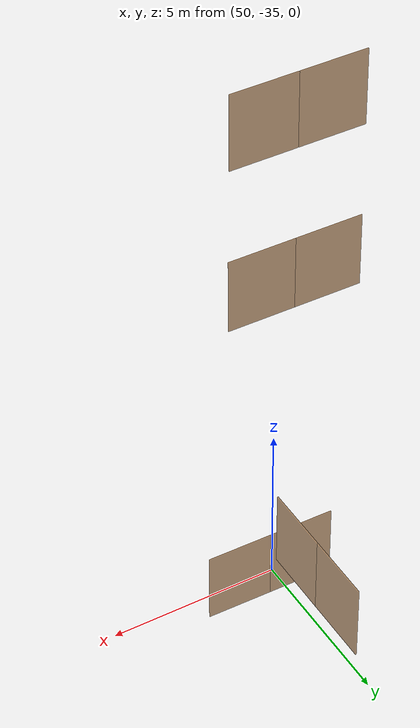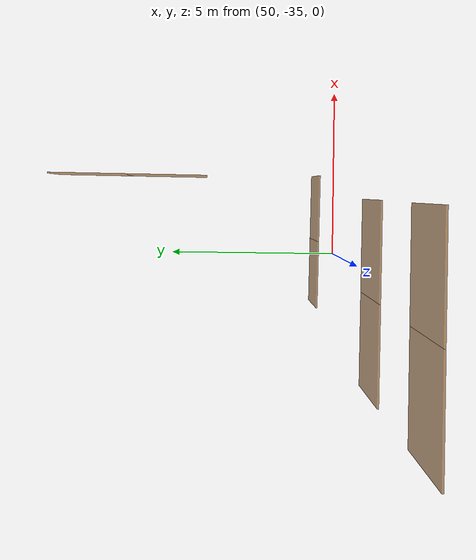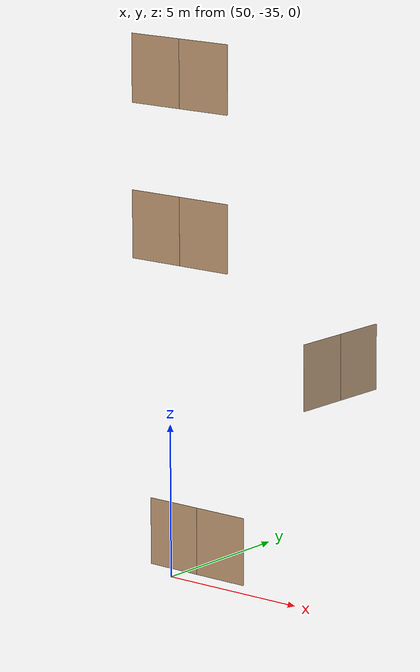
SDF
<sdf version="1.7">
 <world name="sim_world">
  <model name="puerta22">
   <pose>50.48691605512798 -34.29860390191516 0.0 0 0 -0.012374502945588612</pose>
   <link name="right">
    <pose>0.9640616405178116 0 1.11 0 0 0</pose>
    <visual name="right_visual">
     <geometry><box><size>1.9181232810356232 0.03 2.2</size></box></geometry>
     <material>
      <ambient>0.5 0.25 0 0.6</ambient>
      <diffuse>0.5 0.25 0 0.6</diffuse>
      <pbr><metal><metalness>0.0</metalness></metal></pbr>
     </material>
    </visual>
    <collision name="right_collision">
     <geometry><box><size>1.9181232810356232 0.03 2.2</size></box></geometry>
     <surface><contact><collide_bitmask>0x02</collide_bitmask></contact></surface>
    </collision>
    <inertial>
     <mass>50.0</mass>
     <inertia><ixx>20.17041666666667</ixx><iyy>35.49665383854527</iyy><izz>15.333737171878605</izz></inertia>
    </inertial>
   </link>
   <joint name="right_joint" type="revolute">
    <parent>world</parent>
    <child>right</child>
    <axis><xyz>0 0 -1</xyz><limit><lower>0</lower><upper>1.57</upper></limit></axis>
    <pose>0.9640616405178116 0 0 0 0 0</pose>
   </joint>
   <link name="left">
    <pose>-0.9640616405178116 0 1.11 0 0 0</pose>
    <visual name="left_visual">
     <geometry><box><size>1.9181232810356232 0.03 2.2</size></box></geometry>
     <material>
      <ambient>0.5 0.25 0 0.6</ambient>
      <diffuse>0.5 0.25 0 0.6</diffuse>
      <pbr><metal><metalness>0.0</metalness></metal></pbr>
     </material>
    </visual>
    <collision name="left_collision">
     <geometry><box><size>1.9181232810356232 0.03 2.2</size></box></geometry>
     <surface><contact><collide_bitmask>0x02</collide_bitmask></contact></surface>
    </collision>
    <inertial>
     <mass>50.0</mass>
     <inertia><ixx>20.17041666666667</ixx><iyy>35.49665383854527</iyy><izz>15.333737171878605</izz></inertia>
    </inertial>
   </link>
   <joint name="left_joint" type="revolute">
    <parent>world</parent>
    <child>left</child>
    <axis><xyz>0 0 -1</xyz><limit><lower>-1.57</lower><upper>0</upper></limit></axis>
    <pose>-0.9640616405178116 0 0 0 0 0</pose>
   </joint>
   <plugin name="register_component" filename="libregister_component.so">
    <component name="Door">
     <v_max_door>0.5</v_max_door>
     <a_max_door>0.3</a_max_door>
     <a_nom_door>0.15</a_nom_door>
     <dx_min_door>0.01</dx_min_door>
     <f_max_door>500.0</f_max_door>
     <ros_interface>true</ros_interface>
     <door name="puerta22" type="DoubleSwingDoor" left_joint_name="left_joint" right_joint_name="right_joint"/>
    </component>
   </plugin>
  </model>
  <model name="puerta3150">
   <pose>52.29346804669639 -29.168565169091984 5.0 0 0 -1.5774881157275484</pose>
   <link name="right">
    <pose>0.9519466512305291 0 1.11 0 0 0</pose>
    <visual name="right_visual">
     <geometry><box><size>1.8938933024610582 0.03 2.2</size></box></geometry>
     <material>
      <ambient>0.5 0.25 0 0.6</ambient>
      <diffuse>0.5 0.25 0 0.6</diffuse>
      <pbr><metal><metalness>0.0</metalness></metal></pbr>
     </material>
    </visual>
    <collision name="right_collision">
     <geometry><box><size>1.8938933024610582 0.03 2.2</size></box></geometry>
     <surface><contact><collide_bitmask>0x02</collide_bitmask></contact></surface>
    </collision>
    <inertial>
     <mass>50.0</mass>
     <inertia><ixx>20.17041666666667</ixx><iyy>35.11179933794523</iyy><izz>14.948882671278557</izz></inertia>
    </inertial>
   </link>
   <joint name="right_joint" type="revolute">
    <parent>world</parent>
    <child>right</child>
    <axis><xyz>0 0 -1</xyz><limit><lower>0</lower><upper>1.57</upper></limit></axis>
    <pose>0.9519466512305291 0 0 0 0 0</pose>
   </joint>
   <link name="left">
    <pose>-0.9519466512305291 0 1.11 0 0 0</pose>
    <visual name="left_visual">
     <geometry><box><size>1.8938933024610582 0.03 2.2</size></box></geometry>
     <material>
      <ambient>0.5 0.25 0 0.6</ambient>
      <diffuse>0.5 0.25 0 0.6</diffuse>
      <pbr><metal><metalness>0.0</metalness></metal></pbr>
     </material>
    </visual>
    <collision name="left_collision">
     <geometry><box><size>1.8938933024610582 0.03 2.2</size></box></geometry>
     <surface><contact><collide_bitmask>0x02</collide_bitmask></contact></surface>
    </collision>
    <inertial>
     <mass>50.0</mass>
     <inertia><ixx>20.17041666666667</ixx><iyy>35.11179933794523</iyy><izz>14.948882671278557</izz></inertia>
    </inertial>
   </link>
   <joint name="left_joint" type="revolute">
    <parent>world</parent>
    <child>left</child>
    <axis><xyz>0 0 -1</xyz><limit><lower>-1.57</lower><upper>0</upper></limit></axis>
    <pose>-0.9519466512305291 0 0 0 0 0</pose>
   </joint>
   <plugin name="register_component" filename="libregister_component.so">
    <component name="Door">
     <v_max_door>0.5</v_max_door>
     <a_max_door>0.3</a_max_door>
     <a_nom_door>0.15</a_nom_door>
     <dx_min_door>0.01</dx_min_door>
     <f_max_door>500.0</f_max_door>
     <ros_interface>true</ros_interface>
     <door name="puerta3150" type="DoubleSwingDoor" left_joint_name="left_joint" right_joint_name="right_joint"/>
    </component>
   </plugin>
  </model>
  <model name="puerta5247">
   <pose>49.852148461334 -34.325097664764144 10.0 0 0 -0.0058148315706794945</pose>
   <link name="right">
    <pose>0.9715760565459932 0 1.11 0 0 0</pose>
    <visual name="right_visual">
     <geometry><box><size>1.9331521130919864 0.03 2.2</size></box></geometry>
     <material>
      <ambient>0.5 0.25 0 0.6</ambient>
      <diffuse>0.5 0.25 0 0.6</diffuse>
      <pbr><metal><metalness>0.0</metalness></metal></pbr>
     </material>
    </visual>
    <collision name="right_collision">
     <geometry><box><size>1.9331521130919864 0.03 2.2</size></box></geometry>
     <surface><contact><collide_bitmask>0x02</collide_bitmask></contact></surface>
    </collision>
    <inertial>
     <mass>50.0</mass>
     <inertia><ixx>20.17041666666667</ixx><iyy>35.73782121813339</iyy><izz>15.57490455146672</izz></inertia>
    </inertial>
   </link>
   <joint name="right_joint" type="revolute">
    <parent>world</parent>
    <child>right</child>
    <axis><xyz>0 0 -1</xyz><limit><lower>0</lower><upper>1.57</upper></limit></axis>
    <pose>0.9715760565459932 0 0 0 0 0</pose>
   </joint>
   <link name="left">
    <pose>-0.9715760565459932 0 1.11 0 0 0</pose>
    <visual name="left_visual">
     <geometry><box><size>1.9331521130919864 0.03 2.2</size></box></geometry>
     <material>
      <ambient>0.5 0.25 0 0.6</ambient>
      <diffuse>0.5 0.25 0 0.6</diffuse>
      <pbr><metal><metalness>0.0</metalness></metal></pbr>
     </material>
    </visual>
    <collision name="left_collision">
     <geometry><box><size>1.9331521130919864 0.03 2.2</size></box></geometry>
     <surface><contact><collide_bitmask>0x02</collide_bitmask></contact></surface>
    </collision>
    <inertial>
     <mass>50.0</mass>
     <inertia><ixx>20.17041666666667</ixx><iyy>35.73782121813339</iyy><izz>15.57490455146672</izz></inertia>
    </inertial>
   </link>
   <joint name="left_joint" type="revolute">
    <parent>world</parent>
    <child>left</child>
    <axis><xyz>0 0 -1</xyz><limit><lower>-1.57</lower><upper>0</upper></limit></axis>
    <pose>-0.9715760565459932 0 0 0 0 0</pose>
   </joint>
   <plugin name="register_component" filename="libregister_component.so">
    <component name="Door">
     <v_max_door>0.5</v_max_door>
     <a_max_door>0.3</a_max_door>
     <a_nom_door>0.15</a_nom_door>
     <dx_min_door>0.01</dx_min_door>
     <f_max_door>500.0</f_max_door>
     <ros_interface>true</ros_interface>
     <door name="puerta5247" type="DoubleSwingDoor" left_joint_name="left_joint" right_joint_name="right_joint"/>
    </component>
   </plugin>
  </model>
  <model name="puerta7185">
   <pose>49.849562544955305 -34.3061179379897 15.0 0 0 -0.0018291152137669391</pose>
   <link name="right">
    <pose>0.964516897346093 0 1.11 0 0 0</pose>
    <visual name="right_visual">
     <geometry><box><size>1.919033794692186 0.03 2.2</size></box></geometry>
     <material>
      <ambient>0.5 0.25 0 0.6</ambient>
      <diffuse>0.5 0.25 0 0.6</diffuse>
      <pbr><metal><metalness>0.0</metalness></metal></pbr>
     </material>
    </visual>
    <collision name="right_collision">
     <geometry><box><size>1.919033794692186 0.03 2.2</size></box></geometry>
     <surface><contact><collide_bitmask>0x02</collide_bitmask></contact></surface>
    </collision>
    <inertial>
     <mass>50.0</mass>
     <inertia><ixx>20.17041666666667</ixx><iyy>35.51121127154455</iyy><izz>15.348294604877882</izz></inertia>
    </inertial>
   </link>
   <joint name="right_joint" type="revolute">
    <parent>world</parent>
    <child>right</child>
    <axis><xyz>0 0 -1</xyz><limit><lower>0</lower><upper>1.57</upper></limit></axis>
    <pose>0.964516897346093 0 0 0 0 0</pose>
   </joint>
   <link name="left">
    <pose>-0.964516897346093 0 1.11 0 0 0</pose>
    <visual name="left_visual">
     <geometry><box><size>1.919033794692186 0.03 2.2</size></box></geometry>
     <material>
      <ambient>0.5 0.25 0 0.6</ambient>
      <diffuse>0.5 0.25 0 0.6</diffuse>
      <pbr><metal><metalness>0.0</metalness></metal></pbr>
     </material>
    </visual>
    <collision name="left_collision">
     <geometry><box><size>1.919033794692186 0.03 2.2</size></box></geometry>
     <surface><contact><collide_bitmask>0x02</collide_bitmask></contact></surface>
    </collision>
    <inertial>
     <mass>50.0</mass>
     <inertia><ixx>20.17041666666667</ixx><iyy>35.51121127154455</iyy><izz>15.348294604877882</izz></inertia>
    </inertial>
   </link>
   <joint name="left_joint" type="revolute">
    <parent>world</parent>
    <child>left</child>
    <axis><xyz>0 0 -1</xyz><limit><lower>-1.57</lower><upper>0</upper></limit></axis>
    <pose>-0.964516897346093 0 0 0 0 0</pose>
   </joint>
   <plugin name="register_component" filename="libregister_component.so">
    <component name="Door">
     <v_max_door>0.5</v_max_door>
     <a_max_door>0.3</a_max_door>
     <a_nom_door>0.15</a_nom_door>
     <dx_min_door>0.01</dx_min_door>
     <f_max_door>500.0</f_max_door>
     <ros_interface>true</ros_interface>
     <door name="puerta7185" type="DoubleSwingDoor" left_joint_name="left_joint" right_joint_name="right_joint"/>
    </component>
   </plugin>
  </model>
 </world>
</sdf>
